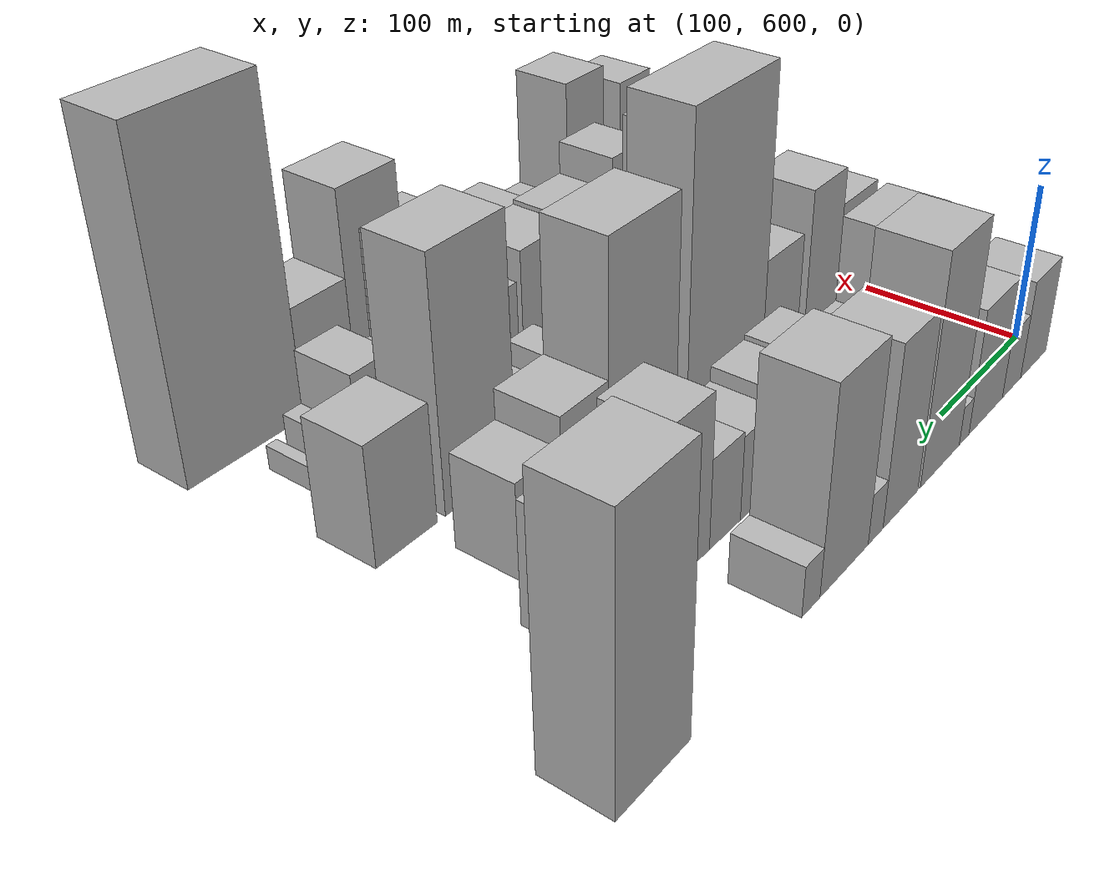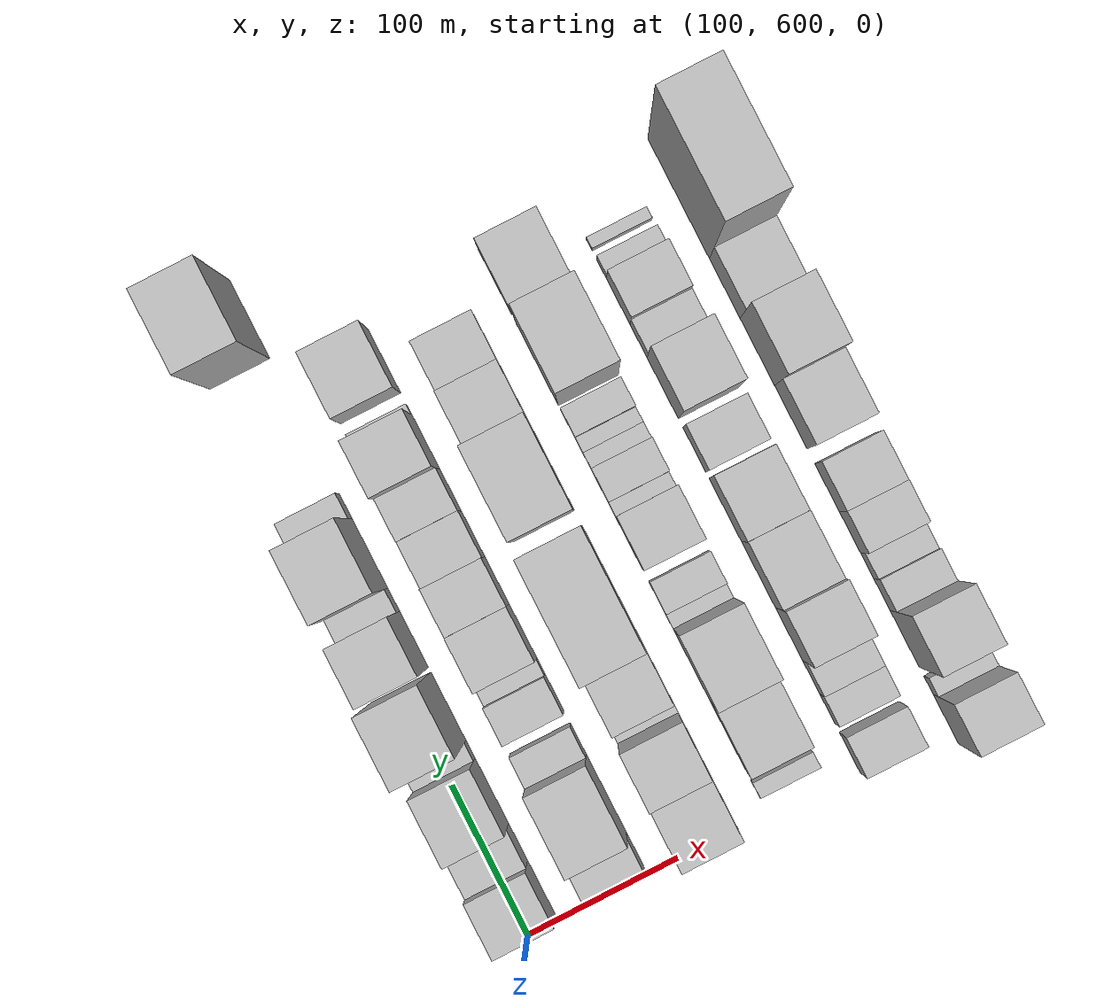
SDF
<sdf version="1.6">
 <world name="default">
  <model name="building_45">
   <static>1</static>
   <pose>100.0000 621.7129 0 0.000000 0.000000 0.000000</pose>
   <link name="link">
    <pose>0 0 31.50 0 0 0</pose>
    <collision name="collision"><geometry><box><size>40.0000 36.3681 63.0000</size></box></geometry></collision>
    <visual name="visual">
     <cast_shadows>0</cast_shadows>
     <geometry><box><size>40.0000 36.3681 63.0000</size></box></geometry>
     <material>
      <script>
       <uri>model://HANNAS_wall/materials/scripts</uri>
       <uri>model://HANNAS_wall/materials/textures</uri>
       <name>vrc/HANNAS_wall</name>
      </script>
     </material>
    </visual>
   </link>
  </model>
  <model name="building_46">
   <static>1</static>
   <pose>100.0000 652.3315 0 0.000000 0.000000 0.000000</pose>
   <link name="link">
    <pose>0 0 21.00 0 0 0</pose>
    <collision name="collision"><geometry><box><size>40.0000 24.8691 42.0000</size></box></geometry></collision>
    <visual name="visual">
     <cast_shadows>0</cast_shadows>
     <geometry><box><size>40.0000 24.8691 42.0000</size></box></geometry>
     <material>
      <script>
       <uri>model://HANNAS_wall/materials/scripts</uri>
       <uri>model://HANNAS_wall/materials/textures</uri>
       <name>vrc/HANNAS_wall</name>
      </script>
     </material>
    </visual>
   </link>
  </model>
  <model name="building_47">
   <static>1</static>
   <pose>100.0000 686.5440 0 0.000000 0.000000 0.000000</pose>
   <link name="link">
    <pose>0 0 39.00 0 0 0</pose>
    <collision name="collision"><geometry><box><size>40.0000 43.5559 78.0000</size></box></geometry></collision>
    <visual name="visual">
     <cast_shadows>0</cast_shadows>
     <geometry><box><size>40.0000 43.5559 78.0000</size></box></geometry>
     <material>
      <script>
       <uri>model://HANNAS_wall/materials/scripts</uri>
       <uri>model://HANNAS_wall/materials/textures</uri>
       <name>vrc/HANNAS_wall</name>
      </script>
     </material>
    </visual>
   </link>
  </model>
  <model name="building_48">
   <static>1</static>
   <pose>100.0000 714.2670 0 0.000000 0.000000 0.000000</pose>
   <link name="link">
    <pose>0 0 12.00 0 0 0</pose>
    <collision name="collision"><geometry><box><size>40.0000 11.8901 24.0000</size></box></geometry></collision>
    <visual name="visual">
     <cast_shadows>0</cast_shadows>
     <geometry><box><size>40.0000 11.8901 24.0000</size></box></geometry>
     <material>
      <script>
       <uri>model://HANNAS_wall/materials/scripts</uri>
       <uri>model://HANNAS_wall/materials/textures</uri>
       <name>vrc/HANNAS_wall</name>
      </script>
     </material>
    </visual>
   </link>
  </model>
  <model name="building_49">
   <static>1</static>
   <pose>100.0000 743.0465 0 0.000000 0.000000 0.000000</pose>
   <link name="link">
    <pose>0 0 69.00 0 0 0</pose>
    <collision name="collision"><geometry><box><size>40.0000 45.6688 138.0000</size></box></geometry></collision>
    <visual name="visual">
     <cast_shadows>0</cast_shadows>
     <geometry><box><size>40.0000 45.6688 138.0000</size></box></geometry>
     <material>
      <script>
       <uri>model://HANNAS_wall/materials/scripts</uri>
       <uri>model://HANNAS_wall/materials/textures</uri>
       <name>vrc/HANNAS_wall</name>
      </script>
     </material>
    </visual>
   </link>
  </model>
  <model name="building_50">
   <static>1</static>
   <pose>100.0000 787.7308 0 0.000000 0.000000 0.000000</pose>
   <link name="link">
    <pose>0 0 54.00 0 0 0</pose>
    <collision name="collision"><geometry><box><size>40.0000 37.6997 108.0000</size></box></geometry></collision>
    <visual name="visual">
     <cast_shadows>0</cast_shadows>
     <geometry><box><size>40.0000 37.6997 108.0000</size></box></geometry>
     <material>
      <script>
       <uri>model://HANNAS_wall/materials/scripts</uri>
       <uri>model://HANNAS_wall/materials/textures</uri>
       <name>vrc/HANNAS_wall</name>
      </script>
     </material>
    </visual>
   </link>
  </model>
  <model name="building_51">
   <static>1</static>
   <pose>100.0000 814.2409 0 0.000000 0.000000 0.000000</pose>
   <link name="link">
    <pose>0 0 15.00 0 0 0</pose>
    <collision name="collision"><geometry><box><size>40.0000 15.3207 30.0000</size></box></geometry></collision>
    <visual name="visual">
     <cast_shadows>0</cast_shadows>
     <geometry><box><size>40.0000 15.3207 30.0000</size></box></geometry>
     <material>
      <script>
       <uri>model://HANNAS_wall/materials/scripts</uri>
       <uri>model://HANNAS_wall/materials/textures</uri>
       <name>vrc/HANNAS_wall</name>
      </script>
     </material>
    </visual>
   </link>
  </model>
  <model name="building_52">
   <static>1</static>
   <pose>100.0000 845.3127 0 0.000000 0.000000 0.000000</pose>
   <link name="link">
    <pose>0 0 60.00 0 0 0</pose>
    <collision name="collision"><geometry><box><size>40.0000 46.8228 120.0000</size></box></geometry></collision>
    <visual name="visual">
     <cast_shadows>0</cast_shadows>
     <geometry><box><size>40.0000 46.8228 120.0000</size></box></geometry>
     <material>
      <script>
       <uri>model://HANNAS_wall/materials/scripts</uri>
       <uri>model://HANNAS_wall/materials/textures</uri>
       <name>vrc/HANNAS_wall</name>
      </script>
     </material>
    </visual>
   </link>
  </model>
  <model name="building_53">
   <static>1</static>
   <pose>100.0000 877.0224 0 0.000000 0.000000 0.000000</pose>
   <link name="link">
    <pose>0 0 15.00 0 0 0</pose>
    <collision name="collision"><geometry><box><size>40.0000 16.5968 30.0000</size></box></geometry></collision>
    <visual name="visual">
     <cast_shadows>0</cast_shadows>
     <geometry><box><size>40.0000 16.5968 30.0000</size></box></geometry>
     <material>
      <script>
       <uri>model://HANNAS_wall/materials/scripts</uri>
       <uri>model://HANNAS_wall/materials/textures</uri>
       <name>vrc/HANNAS_wall</name>
      </script>
     </material>
    </visual>
   </link>
  </model>
  <model name="building_54">
   <static>1</static>
   <pose>100.0000 1002.0476 0 0.000000 0.000000 0.000000</pose>
   <link name="link">
    <pose>0 0 78.00 0 0 0</pose>
    <collision name="collision"><geometry><box><size>40.0000 52.4845 156.0000</size></box></geometry></collision>
    <visual name="visual">
     <cast_shadows>0</cast_shadows>
     <geometry><box><size>40.0000 52.4845 156.0000</size></box></geometry>
     <material>
      <script>
       <uri>model://HANNAS_wall/materials/scripts</uri>
       <uri>model://HANNAS_wall/materials/textures</uri>
       <name>vrc/HANNAS_wall</name>
      </script>
     </material>
    </visual>
   </link>
  </model>
  <model name="building_97">
   <static>1</static>
   <pose>160.0000 616.7836 0 0.000000 0.000000 0.000000</pose>
   <link name="link">
    <pose>0 0 22.50 0 0 0</pose>
    <collision name="collision"><geometry><box><size>40.0000 23.3412 45.0000</size></box></geometry></collision>
    <visual name="visual">
     <cast_shadows>0</cast_shadows>
     <geometry><box><size>40.0000 23.3412 45.0000</size></box></geometry>
     <material>
      <script>
       <uri>model://HANNAS_wall/materials/scripts</uri>
       <uri>model://HANNAS_wall/materials/textures</uri>
       <name>vrc/HANNAS_wall</name>
      </script>
     </material>
    </visual>
   </link>
  </model>
  <model name="building_98">
   <static>1</static>
   <pose>160.0000 654.6012 0 0.000000 0.000000 0.000000</pose>
   <link name="link">
    <pose>0 0 45.00 0 0 0</pose>
    <collision name="collision"><geometry><box><size>40.0000 52.2940 90.0000</size></box></geometry></collision>
    <visual name="visual">
     <cast_shadows>0</cast_shadows>
     <geometry><box><size>40.0000 52.2940 90.0000</size></box></geometry>
     <material>
      <script>
       <uri>model://HANNAS_wall/materials/scripts</uri>
       <uri>model://HANNAS_wall/materials/textures</uri>
       <name>vrc/HANNAS_wall</name>
      </script>
     </material>
    </visual>
   </link>
  </model>
  <model name="building_99">
   <static>1</static>
   <pose>160.0000 690.9713 0 0.000000 0.000000 0.000000</pose>
   <link name="link">
    <pose>0 0 18.00 0 0 0</pose>
    <collision name="collision"><geometry><box><size>40.0000 20.4461 36.0000</size></box></geometry></collision>
    <visual name="visual">
     <cast_shadows>0</cast_shadows>
     <geometry><box><size>40.0000 20.4461 36.0000</size></box></geometry>
     <material>
      <script>
       <uri>model://HANNAS_wall/materials/scripts</uri>
       <uri>model://HANNAS_wall/materials/textures</uri>
       <name>vrc/HANNAS_wall</name>
      </script>
     </material>
    </visual>
   </link>
  </model>
  <model name="building_100">
   <static>1</static>
   <pose>160.0000 721.6264 0 0.000000 0.000000 0.000000</pose>
   <link name="link">
    <pose>0 0 21.00 0 0 0</pose>
    <collision name="collision"><geometry><box><size>40.0000 24.8641 42.0000</size></box></geometry></collision>
    <visual name="visual">
     <cast_shadows>0</cast_shadows>
     <geometry><box><size>40.0000 24.8641 42.0000</size></box></geometry>
     <material>
      <script>
       <uri>model://HANNAS_wall/materials/scripts</uri>
       <uri>model://HANNAS_wall/materials/textures</uri>
       <name>vrc/HANNAS_wall</name>
      </script>
     </material>
    </visual>
   </link>
  </model>
  <model name="building_101">
   <static>1</static>
   <pose>160.0000 739.4592 0 0.000000 0.000000 0.000000</pose>
   <link name="link">
    <pose>0 0 12.00 0 0 0</pose>
    <collision name="collision"><geometry><box><size>40.0000 10.8015 24.0000</size></box></geometry></collision>
    <visual name="visual">
     <cast_shadows>0</cast_shadows>
     <geometry><box><size>40.0000 10.8015 24.0000</size></box></geometry>
     <material>
      <script>
       <uri>model://HANNAS_wall/materials/scripts</uri>
       <uri>model://HANNAS_wall/materials/textures</uri>
       <name>vrc/HANNAS_wall</name>
      </script>
     </material>
    </visual>
   </link>
  </model>
  <model name="building_102">
   <static>1</static>
   <pose>160.0000 762.8154 0 0.000000 0.000000 0.000000</pose>
   <link name="link">
    <pose>0 0 31.50 0 0 0</pose>
    <collision name="collision"><geometry><box><size>40.0000 35.9109 63.0000</size></box></geometry></collision>
    <visual name="visual">
     <cast_shadows>0</cast_shadows>
     <geometry><box><size>40.0000 35.9109 63.0000</size></box></geometry>
     <material>
      <script>
       <uri>model://HANNAS_wall/materials/scripts</uri>
       <uri>model://HANNAS_wall/materials/textures</uri>
       <name>vrc/HANNAS_wall</name>
      </script>
     </material>
    </visual>
   </link>
  </model>
  <model name="building_103">
   <static>1</static>
   <pose>160.0000 796.5156 0 0.000000 0.000000 0.000000</pose>
   <link name="link">
    <pose>0 0 30.00 0 0 0</pose>
    <collision name="collision"><geometry><box><size>40.0000 31.4895 60.0000</size></box></geometry></collision>
    <visual name="visual">
     <cast_shadows>0</cast_shadows>
     <geometry><box><size>40.0000 31.4895 60.0000</size></box></geometry>
     <material>
      <script>
       <uri>model://HANNAS_wall/materials/scripts</uri>
       <uri>model://HANNAS_wall/materials/textures</uri>
       <name>vrc/HANNAS_wall</name>
      </script>
     </material>
    </visual>
   </link>
  </model>
  <model name="building_104">
   <static>1</static>
   <pose>160.0000 827.5429 0 0.000000 0.000000 0.000000</pose>
   <link name="link">
    <pose>0 0 25.50 0 0 0</pose>
    <collision name="collision"><geometry><box><size>40.0000 30.5651 51.0000</size></box></geometry></collision>
    <visual name="visual">
     <cast_shadows>0</cast_shadows>
     <geometry><box><size>40.0000 30.5651 51.0000</size></box></geometry>
     <material>
      <script>
       <uri>model://HANNAS_wall/materials/scripts</uri>
       <uri>model://HANNAS_wall/materials/textures</uri>
       <name>vrc/HANNAS_wall</name>
      </script>
     </material>
    </visual>
   </link>
  </model>
  <model name="building_105">
   <static>1</static>
   <pose>160.0000 856.7677 0 0.000000 0.000000 0.000000</pose>
   <link name="link">
    <pose>0 0 27.00 0 0 0</pose>
    <collision name="collision"><geometry><box><size>40.0000 27.8846 54.0000</size></box></geometry></collision>
    <visual name="visual">
     <cast_shadows>0</cast_shadows>
     <geometry><box><size>40.0000 27.8846 54.0000</size></box></geometry>
     <material>
      <script>
       <uri>model://HANNAS_wall/materials/scripts</uri>
       <uri>model://HANNAS_wall/materials/textures</uri>
       <name>vrc/HANNAS_wall</name>
      </script>
     </material>
    </visual>
   </link>
  </model>
  <model name="building_106">
   <static>1</static>
   <pose>160.0000 888.9263 0 0.000000 0.000000 0.000000</pose>
   <link name="link">
    <pose>0 0 46.50 0 0 0</pose>
    <collision name="collision"><geometry><box><size>40.0000 36.4326 93.0000</size></box></geometry></collision>
    <visual name="visual">
     <cast_shadows>0</cast_shadows>
     <geometry><box><size>40.0000 36.4326 93.0000</size></box></geometry>
     <material>
      <script>
       <uri>model://HANNAS_wall/materials/scripts</uri>
       <uri>model://HANNAS_wall/materials/textures</uri>
       <name>vrc/HANNAS_wall</name>
      </script>
     </material>
    </visual>
   </link>
  </model>
  <model name="building_107">
   <static>1</static>
   <pose>160.0000 910.5345 0 0.000000 0.000000 0.000000</pose>
   <link name="link">
    <pose>0 0 7.50 0 0 0</pose>
    <collision name="collision"><geometry><box><size>40.0000 6.7838 15.0000</size></box></geometry></collision>
    <visual name="visual">
     <cast_shadows>0</cast_shadows>
     <geometry><box><size>40.0000 6.7838 15.0000</size></box></geometry>
     <material>
      <script>
       <uri>model://HANNAS_wall/materials/scripts</uri>
       <uri>model://HANNAS_wall/materials/textures</uri>
       <name>vrc/HANNAS_wall</name>
      </script>
     </material>
    </visual>
   </link>
  </model>
  <model name="building_108">
   <static>1</static>
   <pose>160.0000 943.4045 0 0.000000 0.000000 0.000000</pose>
   <link name="link">
    <pose>0 0 36.00 0 0 0</pose>
    <collision name="collision"><geometry><box><size>40.0000 42.9562 72.0000</size></box></geometry></collision>
    <visual name="visual">
     <cast_shadows>0</cast_shadows>
     <geometry><box><size>40.0000 42.9562 72.0000</size></box></geometry>
     <material>
      <script>
       <uri>model://HANNAS_wall/materials/scripts</uri>
       <uri>model://HANNAS_wall/materials/textures</uri>
       <name>vrc/HANNAS_wall</name>
      </script>
     </material>
    </visual>
   </link>
  </model>
  <model name="building_153">
   <static>1</static>
   <pose>220.0000 620.1859 0 0.000000 0.000000 0.000000</pose>
   <link name="link">
    <pose>0 0 37.50 0 0 0</pose>
    <collision name="collision"><geometry><box><size>40.0000 41.4563 75.0000</size></box></geometry></collision>
    <visual name="visual">
     <cast_shadows>0</cast_shadows>
     <geometry><box><size>40.0000 41.4563 75.0000</size></box></geometry>
     <material>
      <script>
       <uri>model://HANNAS_wall/materials/scripts</uri>
       <uri>model://HANNAS_wall/materials/textures</uri>
       <name>vrc/HANNAS_wall</name>
      </script>
     </material>
    </visual>
   </link>
  </model>
  <model name="building_154">
   <static>1</static>
   <pose>220.0000 659.6384 0 0.000000 0.000000 0.000000</pose>
   <link name="link">
    <pose>0 0 49.50 0 0 0</pose>
    <collision name="collision"><geometry><box><size>40.0000 37.4487 99.0000</size></box></geometry></collision>
    <visual name="visual">
     <cast_shadows>0</cast_shadows>
     <geometry><box><size>40.0000 37.4487 99.0000</size></box></geometry>
     <material>
      <script>
       <uri>model://HANNAS_wall/materials/scripts</uri>
       <uri>model://HANNAS_wall/materials/textures</uri>
       <name>vrc/HANNAS_wall</name>
      </script>
     </material>
    </visual>
   </link>
  </model>
  <model name="building_155">
   <static>1</static>
   <pose>220.0000 682.5464 0 0.000000 0.000000 0.000000</pose>
   <link name="link">
    <pose>0 0 9.00 0 0 0</pose>
    <collision name="collision"><geometry><box><size>40.0000 8.3672 18.0000</size></box></geometry></collision>
    <visual name="visual">
     <cast_shadows>0</cast_shadows>
     <geometry><box><size>40.0000 8.3672 18.0000</size></box></geometry>
     <material>
      <script>
       <uri>model://HANNAS_wall/materials/scripts</uri>
       <uri>model://HANNAS_wall/materials/textures</uri>
       <name>vrc/HANNAS_wall</name>
      </script>
     </material>
    </visual>
   </link>
  </model>
  <model name="building_156">
   <static>1</static>
   <pose>220.0000 706.3775 0 0.000000 0.000000 0.000000</pose>
   <link name="link">
    <pose>0 0 37.50 0 0 0</pose>
    <collision name="collision"><geometry><box><size>40.0000 39.2950 75.0000</size></box></geometry></collision>
    <visual name="visual">
     <cast_shadows>0</cast_shadows>
     <geometry><box><size>40.0000 39.2950 75.0000</size></box></geometry>
     <material>
      <script>
       <uri>model://HANNAS_wall/materials/scripts</uri>
       <uri>model://HANNAS_wall/materials/textures</uri>
       <name>vrc/HANNAS_wall</name>
      </script>
     </material>
    </visual>
   </link>
  </model>
  <model name="building_157">
   <static>1</static>
   <pose>220.0000 764.1776 0 0.000000 0.000000 0.000000</pose>
   <link name="link">
    <pose>0 0 96.00 0 0 0</pose>
    <collision name="collision"><geometry><box><size>40.0000 76.3051 192.0000</size></box></geometry></collision>
    <visual name="visual">
     <cast_shadows>0</cast_shadows>
     <geometry><box><size>40.0000 76.3051 192.0000</size></box></geometry>
     <material>
      <script>
       <uri>model://HANNAS_wall/materials/scripts</uri>
       <uri>model://HANNAS_wall/materials/textures</uri>
       <name>vrc/HANNAS_wall</name>
      </script>
     </material>
    </visual>
   </link>
  </model>
  <model name="building_158">
   <static>1</static>
   <pose>220.0000 841.8316 0 0.000000 0.000000 0.000000</pose>
   <link name="link">
    <pose>0 0 76.50 0 0 0</pose>
    <collision name="collision"><geometry><box><size>40.0000 59.0029 153.0000</size></box></geometry></collision>
    <visual name="visual">
     <cast_shadows>0</cast_shadows>
     <geometry><box><size>40.0000 59.0029 153.0000</size></box></geometry>
     <material>
      <script>
       <uri>model://HANNAS_wall/materials/scripts</uri>
       <uri>model://HANNAS_wall/materials/textures</uri>
       <name>vrc/HANNAS_wall</name>
      </script>
     </material>
    </visual>
   </link>
  </model>
  <model name="building_159">
   <static>1</static>
   <pose>220.0000 890.1207 0 0.000000 0.000000 0.000000</pose>
   <link name="link">
    <pose>0 0 37.50 0 0 0</pose>
    <collision name="collision"><geometry><box><size>40.0000 37.5754 75.0000</size></box></geometry></collision>
    <visual name="visual">
     <cast_shadows>0</cast_shadows>
     <geometry><box><size>40.0000 37.5754 75.0000</size></box></geometry>
     <material>
      <script>
       <uri>model://HANNAS_wall/materials/scripts</uri>
       <uri>model://HANNAS_wall/materials/textures</uri>
       <name>vrc/HANNAS_wall</name>
      </script>
     </material>
    </visual>
   </link>
  </model>
  <model name="building_160">
   <static>1</static>
   <pose>220.0000 925.5308 0 0.000000 0.000000 0.000000</pose>
   <link name="link">
    <pose>0 0 28.50 0 0 0</pose>
    <collision name="collision"><geometry><box><size>40.0000 33.2448 57.0000</size></box></geometry></collision>
    <visual name="visual">
     <cast_shadows>0</cast_shadows>
     <geometry><box><size>40.0000 33.2448 57.0000</size></box></geometry>
     <material>
      <script>
       <uri>model://HANNAS_wall/materials/scripts</uri>
       <uri>model://HANNAS_wall/materials/textures</uri>
       <name>vrc/HANNAS_wall</name>
      </script>
     </material>
    </visual>
   </link>
  </model>
  <model name="building_204">
   <static>1</static>
   <pose>280.0000 616.7926 0 0.000000 0.000000 0.000000</pose>
   <link name="link">
    <pose>0 0 12.00 0 0 0</pose>
    <collision name="collision"><geometry><box><size>40.0000 10.3981 24.0000</size></box></geometry></collision>
    <visual name="visual">
     <cast_shadows>0</cast_shadows>
     <geometry><box><size>40.0000 10.3981 24.0000</size></box></geometry>
     <material>
      <script>
       <uri>model://HANNAS_wall/materials/scripts</uri>
       <uri>model://HANNAS_wall/materials/textures</uri>
       <name>vrc/HANNAS_wall</name>
      </script>
     </material>
    </visual>
   </link>
  </model>
  <model name="building_205">
   <static>1</static>
   <pose>280.0000 653.2067 0 0.000000 0.000000 0.000000</pose>
   <link name="link">
    <pose>0 0 40.50 0 0 0</pose>
    <collision name="collision"><geometry><box><size>40.0000 46.4300 81.0000</size></box></geometry></collision>
    <visual name="visual">
     <cast_shadows>0</cast_shadows>
     <geometry><box><size>40.0000 46.4300 81.0000</size></box></geometry>
     <material>
      <script>
       <uri>model://HANNAS_wall/materials/scripts</uri>
       <uri>model://HANNAS_wall/materials/textures</uri>
       <name>vrc/HANNAS_wall</name>
      </script>
     </material>
    </visual>
   </link>
  </model>
  <model name="building_206">
   <static>1</static>
   <pose>280.0000 700.0996 0 0.000000 0.000000 0.000000</pose>
   <link name="link">
    <pose>0 0 67.50 0 0 0</pose>
    <collision name="collision"><geometry><box><size>40.0000 47.3556 135.0000</size></box></geometry></collision>
    <visual name="visual">
     <cast_shadows>0</cast_shadows>
     <geometry><box><size>40.0000 47.3556 135.0000</size></box></geometry>
     <material>
      <script>
       <uri>model://HANNAS_wall/materials/scripts</uri>
       <uri>model://HANNAS_wall/materials/textures</uri>
       <name>vrc/HANNAS_wall</name>
      </script>
     </material>
    </visual>
   </link>
  </model>
  <model name="building_207">
   <static>1</static>
   <pose>280.0000 728.6283 0 0.000000 0.000000 0.000000</pose>
   <link name="link">
    <pose>0 0 10.50 0 0 0</pose>
    <collision name="collision"><geometry><box><size>40.0000 9.7019 21.0000</size></box></geometry></collision>
    <visual name="visual">
     <cast_shadows>0</cast_shadows>
     <geometry><box><size>40.0000 9.7019 21.0000</size></box></geometry>
     <material>
      <script>
       <uri>model://HANNAS_wall/materials/scripts</uri>
       <uri>model://HANNAS_wall/materials/textures</uri>
       <name>vrc/HANNAS_wall</name>
      </script>
     </material>
    </visual>
   </link>
  </model>
  <model name="building_208">
   <static>1</static>
   <pose>280.0000 744.1507 0 0.000000 0.000000 0.000000</pose>
   <link name="link">
    <pose>0 0 18.00 0 0 0</pose>
    <collision name="collision"><geometry><box><size>40.0000 21.3428 36.0000</size></box></geometry></collision>
    <visual name="visual">
     <cast_shadows>0</cast_shadows>
     <geometry><box><size>40.0000 21.3428 36.0000</size></box></geometry>
     <material>
      <script>
       <uri>model://HANNAS_wall/materials/scripts</uri>
       <uri>model://HANNAS_wall/materials/textures</uri>
       <name>vrc/HANNAS_wall</name>
      </script>
     </material>
    </visual>
   </link>
  </model>
  <model name="building_209">
   <static>1</static>
   <pose>280.0000 780.3686 0 0.000000 0.000000 0.000000</pose>
   <link name="link">
    <pose>0 0 33.00 0 0 0</pose>
    <collision name="collision"><geometry><box><size>40.0000 35.0929 66.0000</size></box></geometry></collision>
    <visual name="visual">
     <cast_shadows>0</cast_shadows>
     <geometry><box><size>40.0000 35.0929 66.0000</size></box></geometry>
     <material>
      <script>
       <uri>model://HANNAS_wall/materials/scripts</uri>
       <uri>model://HANNAS_wall/materials/textures</uri>
       <name>vrc/HANNAS_wall</name>
      </script>
     </material>
    </visual>
   </link>
  </model>
  <model name="building_210">
   <static>1</static>
   <pose>280.0000 802.5792 0 0.000000 0.000000 0.000000</pose>
   <link name="link">
    <pose>0 0 10.50 0 0 0</pose>
    <collision name="collision"><geometry><box><size>40.0000 9.3283 21.0000</size></box></geometry></collision>
    <visual name="visual">
     <cast_shadows>0</cast_shadows>
     <geometry><box><size>40.0000 9.3283 21.0000</size></box></geometry>
     <material>
      <script>
       <uri>model://HANNAS_wall/materials/scripts</uri>
       <uri>model://HANNAS_wall/materials/textures</uri>
       <name>vrc/HANNAS_wall</name>
      </script>
     </material>
    </visual>
   </link>
  </model>
  <model name="building_211">
   <static>1</static>
   <pose>280.0000 818.3663 0 0.000000 0.000000 0.000000</pose>
   <link name="link">
    <pose>0 0 19.50 0 0 0</pose>
    <collision name="collision"><geometry><box><size>40.0000 22.2459 39.0000</size></box></geometry></collision>
    <visual name="visual">
     <cast_shadows>0</cast_shadows>
     <geometry><box><size>40.0000 22.2459 39.0000</size></box></geometry>
     <material>
      <script>
       <uri>model://HANNAS_wall/materials/scripts</uri>
       <uri>model://HANNAS_wall/materials/textures</uri>
       <name>vrc/HANNAS_wall</name>
      </script>
     </material>
    </visual>
   </link>
  </model>
  <model name="building_212">
   <static>1</static>
   <pose>280.0000 834.8119 0 0.000000 0.000000 0.000000</pose>
   <link name="link">
    <pose>0 0 12.00 0 0 0</pose>
    <collision name="collision"><geometry><box><size>40.0000 10.6452 24.0000</size></box></geometry></collision>
    <visual name="visual">
     <cast_shadows>0</cast_shadows>
     <geometry><box><size>40.0000 10.6452 24.0000</size></box></geometry>
     <material>
      <script>
       <uri>model://HANNAS_wall/materials/scripts</uri>
       <uri>model://HANNAS_wall/materials/textures</uri>
       <name>vrc/HANNAS_wall</name>
      </script>
     </material>
    </visual>
   </link>
  </model>
  <model name="building_213">
   <static>1</static>
   <pose>280.0000 845.1357 0 0.000000 0.000000 0.000000</pose>
   <link name="link">
    <pose>0 0 10.50 0 0 0</pose>
    <collision name="collision"><geometry><box><size>40.0000 10.0023 21.0000</size></box></geometry></collision>
    <visual name="visual">
     <cast_shadows>0</cast_shadows>
     <geometry><box><size>40.0000 10.0023 21.0000</size></box></geometry>
     <material>
      <script>
       <uri>model://HANNAS_wall/materials/scripts</uri>
       <uri>model://HANNAS_wall/materials/textures</uri>
       <name>vrc/HANNAS_wall</name>
      </script>
     </material>
    </visual>
   </link>
  </model>
  <model name="building_214">
   <static>1</static>
   <pose>280.0000 859.7303 0 0.000000 0.000000 0.000000</pose>
   <link name="link">
    <pose>0 0 16.50 0 0 0</pose>
    <collision name="collision"><geometry><box><size>40.0000 19.1869 33.0000</size></box></geometry></collision>
    <visual name="visual">
     <cast_shadows>0</cast_shadows>
     <geometry><box><size>40.0000 19.1869 33.0000</size></box></geometry>
     <material>
      <script>
       <uri>model://HANNAS_wall/materials/scripts</uri>
       <uri>model://HANNAS_wall/materials/textures</uri>
       <name>vrc/HANNAS_wall</name>
      </script>
     </material>
    </visual>
   </link>
  </model>
  <model name="building_215">
   <static>1</static>
   <pose>280.0000 899.7882 0 0.000000 0.000000 0.000000</pose>
   <link name="link">
    <pose>0 0 75.00 0 0 0</pose>
    <collision name="collision"><geometry><box><size>40.0000 54.9289 150.0000</size></box></geometry></collision>
    <visual name="visual">
     <cast_shadows>0</cast_shadows>
     <geometry><box><size>40.0000 54.9289 150.0000</size></box></geometry>
     <material>
      <script>
       <uri>model://HANNAS_wall/materials/scripts</uri>
       <uri>model://HANNAS_wall/materials/textures</uri>
       <name>vrc/HANNAS_wall</name>
      </script>
     </material>
    </visual>
   </link>
  </model>
  <model name="building_216">
   <static>1</static>
   <pose>280.0000 954.7654 0 0.000000 0.000000 0.000000</pose>
   <link name="link">
    <pose>0 0 36.00 0 0 0</pose>
    <collision name="collision"><geometry><box><size>40.0000 43.0254 72.0000</size></box></geometry></collision>
    <visual name="visual">
     <cast_shadows>0</cast_shadows>
     <geometry><box><size>40.0000 43.0254 72.0000</size></box></geometry>
     <material>
      <script>
       <uri>model://HANNAS_wall/materials/scripts</uri>
       <uri>model://HANNAS_wall/materials/textures</uri>
       <name>vrc/HANNAS_wall</name>
      </script>
     </material>
    </visual>
   </link>
  </model>
  <model name="building_264">
   <static>1</static>
   <pose>340.0000 609.6647 0 0.000000 0.000000 0.000000</pose>
   <link name="link">
    <pose>0 0 24.00 0 0 0</pose>
    <collision name="collision"><geometry><box><size>40.0000 26.7049 48.0000</size></box></geometry></collision>
    <visual name="visual">
     <cast_shadows>0</cast_shadows>
     <geometry><box><size>40.0000 26.7049 48.0000</size></box></geometry>
     <material>
      <script>
       <uri>model://HANNAS_wall/materials/scripts</uri>
       <uri>model://HANNAS_wall/materials/textures</uri>
       <name>vrc/HANNAS_wall</name>
      </script>
     </material>
    </visual>
   </link>
  </model>
  <model name="building_265">
   <static>1</static>
   <pose>340.0000 638.9620 0 0.000000 0.000000 0.000000</pose>
   <link name="link">
    <pose>0 0 18.00 0 0 0</pose>
    <collision name="collision"><geometry><box><size>40.0000 19.8898 36.0000</size></box></geometry></collision>
    <visual name="visual">
     <cast_shadows>0</cast_shadows>
     <geometry><box><size>40.0000 19.8898 36.0000</size></box></geometry>
     <material>
      <script>
       <uri>model://HANNAS_wall/materials/scripts</uri>
       <uri>model://HANNAS_wall/materials/textures</uri>
       <name>vrc/HANNAS_wall</name>
      </script>
     </material>
    </visual>
   </link>
  </model>
  <model name="building_266">
   <static>1</static>
   <pose>340.0000 660.0157 0 0.000000 0.000000 0.000000</pose>
   <link name="link">
    <pose>0 0 19.50 0 0 0</pose>
    <collision name="collision"><geometry><box><size>40.0000 22.2176 39.0000</size></box></geometry></collision>
    <visual name="visual">
     <cast_shadows>0</cast_shadows>
     <geometry><box><size>40.0000 22.2176 39.0000</size></box></geometry>
     <material>
      <script>
       <uri>model://HANNAS_wall/materials/scripts</uri>
       <uri>model://HANNAS_wall/materials/textures</uri>
       <name>vrc/HANNAS_wall</name>
      </script>
     </material>
    </visual>
   </link>
  </model>
  <model name="building_267">
   <static>1</static>
   <pose>340.0000 688.8645 0 0.000000 0.000000 0.000000</pose>
   <link name="link">
    <pose>0 0 48.00 0 0 0</pose>
    <collision name="collision"><geometry><box><size>40.0000 35.4798 96.0000</size></box></geometry></collision>
    <visual name="visual">
     <cast_shadows>0</cast_shadows>
     <geometry><box><size>40.0000 35.4798 96.0000</size></box></geometry>
     <material>
      <script>
       <uri>model://HANNAS_wall/materials/scripts</uri>
       <uri>model://HANNAS_wall/materials/textures</uri>
       <name>vrc/HANNAS_wall</name>
      </script>
     </material>
    </visual>
   </link>
  </model>
  <model name="building_268">
   <static>1</static>
   <pose>340.0000 728.6008 0 0.000000 0.000000 0.000000</pose>
   <link name="link">
    <pose>0 0 37.50 0 0 0</pose>
    <collision name="collision"><geometry><box><size>40.0000 43.9928 75.0000</size></box></geometry></collision>
    <visual name="visual">
     <cast_shadows>0</cast_shadows>
     <geometry><box><size>40.0000 43.9928 75.0000</size></box></geometry>
     <material>
      <script>
       <uri>model://HANNAS_wall/materials/scripts</uri>
       <uri>model://HANNAS_wall/materials/textures</uri>
       <name>vrc/HANNAS_wall</name>
      </script>
     </material>
    </visual>
   </link>
  </model>
  <model name="building_269">
   <static>1</static>
   <pose>340.0000 771.8054 0 0.000000 0.000000 0.000000</pose>
   <link name="link">
    <pose>0 0 36.00 0 0 0</pose>
    <collision name="collision"><geometry><box><size>40.0000 42.4165 72.0000</size></box></geometry></collision>
    <visual name="visual">
     <cast_shadows>0</cast_shadows>
     <geometry><box><size>40.0000 42.4165 72.0000</size></box></geometry>
     <material>
      <script>
       <uri>model://HANNAS_wall/materials/scripts</uri>
       <uri>model://HANNAS_wall/materials/textures</uri>
       <name>vrc/HANNAS_wall</name>
      </script>
     </material>
    </visual>
   </link>
  </model>
  <model name="building_270">
   <static>1</static>
   <pose>340.0000 811.9060 0 0.000000 0.000000 0.000000</pose>
   <link name="link">
    <pose>0 0 27.00 0 0 0</pose>
    <collision name="collision"><geometry><box><size>40.0000 29.7848 54.0000</size></box></geometry></collision>
    <visual name="visual">
     <cast_shadows>0</cast_shadows>
     <geometry><box><size>40.0000 29.7848 54.0000</size></box></geometry>
     <material>
      <script>
       <uri>model://HANNAS_wall/materials/scripts</uri>
       <uri>model://HANNAS_wall/materials/textures</uri>
       <name>vrc/HANNAS_wall</name>
      </script>
     </material>
    </visual>
   </link>
  </model>
  <model name="building_271">
   <static>1</static>
   <pose>340.0000 853.2076 0 0.000000 0.000000 0.000000</pose>
   <link name="link">
    <pose>0 0 54.00 0 0 0</pose>
    <collision name="collision"><geometry><box><size>40.0000 40.8183 108.0000</size></box></geometry></collision>
    <visual name="visual">
     <cast_shadows>0</cast_shadows>
     <geometry><box><size>40.0000 40.8183 108.0000</size></box></geometry>
     <material>
      <script>
       <uri>model://HANNAS_wall/materials/scripts</uri>
       <uri>model://HANNAS_wall/materials/textures</uri>
       <name>vrc/HANNAS_wall</name>
      </script>
     </material>
    </visual>
   </link>
  </model>
  <model name="building_272">
   <static>1</static>
   <pose>340.0000 884.6837 0 0.000000 0.000000 0.000000</pose>
   <link name="link">
    <pose>0 0 21.00 0 0 0</pose>
    <collision name="collision"><geometry><box><size>40.0000 22.1340 42.0000</size></box></geometry></collision>
    <visual name="visual">
     <cast_shadows>0</cast_shadows>
     <geometry><box><size>40.0000 22.1340 42.0000</size></box></geometry>
     <material>
      <script>
       <uri>model://HANNAS_wall/materials/scripts</uri>
       <uri>model://HANNAS_wall/materials/textures</uri>
       <name>vrc/HANNAS_wall</name>
      </script>
     </material>
    </visual>
   </link>
  </model>
  <model name="building_273">
   <static>1</static>
   <pose>340.0000 911.0163 0 0.000000 0.000000 0.000000</pose>
   <link name="link">
    <pose>0 0 30.00 0 0 0</pose>
    <collision name="collision"><geometry><box><size>40.0000 30.5310 60.0000</size></box></geometry></collision>
    <visual name="visual">
     <cast_shadows>0</cast_shadows>
     <geometry><box><size>40.0000 30.5310 60.0000</size></box></geometry>
     <material>
      <script>
       <uri>model://HANNAS_wall/materials/scripts</uri>
       <uri>model://HANNAS_wall/materials/textures</uri>
       <name>vrc/HANNAS_wall</name>
      </script>
     </material>
    </visual>
   </link>
  </model>
  <model name="building_274">
   <static>1</static>
   <pose>340.0000 932.7305 0 0.000000 0.000000 0.000000</pose>
   <link name="link">
    <pose>0 0 13.50 0 0 0</pose>
    <collision name="collision"><geometry><box><size>40.0000 12.8974 27.0000</size></box></geometry></collision>
    <visual name="visual">
     <cast_shadows>0</cast_shadows>
     <geometry><box><size>40.0000 12.8974 27.0000</size></box></geometry>
     <material>
      <script>
       <uri>model://HANNAS_wall/materials/scripts</uri>
       <uri>model://HANNAS_wall/materials/textures</uri>
       <name>vrc/HANNAS_wall</name>
      </script>
     </material>
    </visual>
   </link>
  </model>
  <model name="building_275">
   <static>1</static>
   <pose>340.0000 948.9007 0 0.000000 0.000000 0.000000</pose>
   <link name="link">
    <pose>0 0 7.50 0 0 0</pose>
    <collision name="collision"><geometry><box><size>40.0000 7.4431 15.0000</size></box></geometry></collision>
    <visual name="visual">
     <cast_shadows>0</cast_shadows>
     <geometry><box><size>40.0000 7.4431 15.0000</size></box></geometry>
     <material>
      <script>
       <uri>model://HANNAS_wall/materials/scripts</uri>
       <uri>model://HANNAS_wall/materials/textures</uri>
       <name>vrc/HANNAS_wall</name>
      </script>
     </material>
    </visual>
   </link>
  </model>
  <model name="building_320">
   <static>1</static>
   <pose>400.0000 600.8670 0 0.000000 0.000000 0.000000</pose>
   <link name="link">
    <pose>0 0 49.50 0 0 0</pose>
    <collision name="collision"><geometry><box><size>40.0000 33.1235 99.0000</size></box></geometry></collision>
    <visual name="visual">
     <cast_shadows>0</cast_shadows>
     <geometry><box><size>40.0000 33.1235 99.0000</size></box></geometry>
     <material>
      <script>
       <uri>model://HANNAS_wall/materials/scripts</uri>
       <uri>model://HANNAS_wall/materials/textures</uri>
       <name>vrc/HANNAS_wall</name>
      </script>
     </material>
    </visual>
   </link>
  </model>
  <model name="building_321">
   <static>1</static>
   <pose>400.0000 623.5856 0 0.000000 0.000000 0.000000</pose>
   <link name="link">
    <pose>0 0 13.50 0 0 0</pose>
    <collision name="collision"><geometry><box><size>40.0000 12.3138 27.0000</size></box></geometry></collision>
    <visual name="visual">
     <cast_shadows>0</cast_shadows>
     <geometry><box><size>40.0000 12.3138 27.0000</size></box></geometry>
     <material>
      <script>
       <uri>model://HANNAS_wall/materials/scripts</uri>
       <uri>model://HANNAS_wall/materials/textures</uri>
       <name>vrc/HANNAS_wall</name>
      </script>
     </material>
    </visual>
   </link>
  </model>
  <model name="building_322">
   <static>1</static>
   <pose>400.0000 654.7587 0 0.000000 0.000000 0.000000</pose>
   <link name="link">
    <pose>0 0 58.50 0 0 0</pose>
    <collision name="collision"><geometry><box><size>40.0000 38.0324 117.0000</size></box></geometry></collision>
    <visual name="visual">
     <cast_shadows>0</cast_shadows>
     <geometry><box><size>40.0000 38.0324 117.0000</size></box></geometry>
     <material>
      <script>
       <uri>model://HANNAS_wall/materials/scripts</uri>
       <uri>model://HANNAS_wall/materials/textures</uri>
       <name>vrc/HANNAS_wall</name>
      </script>
     </material>
    </visual>
   </link>
  </model>
  <model name="building_323">
   <static>1</static>
   <pose>400.0000 684.3409 0 0.000000 0.000000 0.000000</pose>
   <link name="link">
    <pose>0 0 19.50 0 0 0</pose>
    <collision name="collision"><geometry><box><size>40.0000 21.1320 39.0000</size></box></geometry></collision>
    <visual name="visual">
     <cast_shadows>0</cast_shadows>
     <geometry><box><size>40.0000 21.1320 39.0000</size></box></geometry>
     <material>
      <script>
       <uri>model://HANNAS_wall/materials/scripts</uri>
       <uri>model://HANNAS_wall/materials/textures</uri>
       <name>vrc/HANNAS_wall</name>
      </script>
     </material>
    </visual>
   </link>
  </model>
  <model name="building_324">
   <static>1</static>
   <pose>400.0000 703.5950 0 0.000000 0.000000 0.000000</pose>
   <link name="link">
    <pose>0 0 15.00 0 0 0</pose>
    <collision name="collision"><geometry><box><size>40.0000 17.3762 30.0000</size></box></geometry></collision>
    <visual name="visual">
     <cast_shadows>0</cast_shadows>
     <geometry><box><size>40.0000 17.3762 30.0000</size></box></geometry>
     <material>
      <script>
       <uri>model://HANNAS_wall/materials/scripts</uri>
       <uri>model://HANNAS_wall/materials/textures</uri>
       <name>vrc/HANNAS_wall</name>
      </script>
     </material>
    </visual>
   </link>
  </model>
  <model name="building_325">
   <static>1</static>
   <pose>400.0000 725.9614 0 0.000000 0.000000 0.000000</pose>
   <link name="link">
    <pose>0 0 27.00 0 0 0</pose>
    <collision name="collision"><geometry><box><size>40.0000 27.3566 54.0000</size></box></geometry></collision>
    <visual name="visual">
     <cast_shadows>0</cast_shadows>
     <geometry><box><size>40.0000 27.3566 54.0000</size></box></geometry>
     <material>
      <script>
       <uri>model://HANNAS_wall/materials/scripts</uri>
       <uri>model://HANNAS_wall/materials/textures</uri>
       <name>vrc/HANNAS_wall</name>
      </script>
     </material>
    </visual>
   </link>
  </model>
  <model name="building_326">
   <static>1</static>
   <pose>400.0000 755.7596 0 0.000000 0.000000 0.000000</pose>
   <link name="link">
    <pose>0 0 27.00 0 0 0</pose>
    <collision name="collision"><geometry><box><size>40.0000 32.2397 54.0000</size></box></geometry></collision>
    <visual name="visual">
     <cast_shadows>0</cast_shadows>
     <geometry><box><size>40.0000 32.2397 54.0000</size></box></geometry>
     <material>
      <script>
       <uri>model://HANNAS_wall/materials/scripts</uri>
       <uri>model://HANNAS_wall/materials/textures</uri>
       <name>vrc/HANNAS_wall</name>
      </script>
     </material>
    </visual>
   </link>
  </model>
  <model name="building_327">
   <static>1</static>
   <pose>400.0000 803.0306 0 0.000000 0.000000 0.000000</pose>
   <link name="link">
    <pose>0 0 37.50 0 0 0</pose>
    <collision name="collision"><geometry><box><size>40.0000 42.3023 75.0000</size></box></geometry></collision>
    <visual name="visual">
     <cast_shadows>0</cast_shadows>
     <geometry><box><size>40.0000 42.3023 75.0000</size></box></geometry>
     <material>
      <script>
       <uri>model://HANNAS_wall/materials/scripts</uri>
       <uri>model://HANNAS_wall/materials/textures</uri>
       <name>vrc/HANNAS_wall</name>
      </script>
     </material>
    </visual>
   </link>
  </model>
  <model name="building_328">
   <static>1</static>
   <pose>400.0000 846.6576 0 0.000000 0.000000 0.000000</pose>
   <link name="link">
    <pose>0 0 61.50 0 0 0</pose>
    <collision name="collision"><geometry><box><size>40.0000 44.9518 123.0000</size></box></geometry></collision>
    <visual name="visual">
     <cast_shadows>0</cast_shadows>
     <geometry><box><size>40.0000 44.9518 123.0000</size></box></geometry>
     <material>
      <script>
       <uri>model://HANNAS_wall/materials/scripts</uri>
       <uri>model://HANNAS_wall/materials/textures</uri>
       <name>vrc/HANNAS_wall</name>
      </script>
     </material>
    </visual>
   </link>
  </model>
  <model name="building_329">
   <static>1</static>
   <pose>400.0000 889.1206 0 0.000000 0.000000 0.000000</pose>
   <link name="link">
    <pose>0 0 34.50 0 0 0</pose>
    <collision name="collision"><geometry><box><size>40.0000 39.9742 69.0000</size></box></geometry></collision>
    <visual name="visual">
     <cast_shadows>0</cast_shadows>
     <geometry><box><size>40.0000 39.9742 69.0000</size></box></geometry>
     <material>
      <script>
       <uri>model://HANNAS_wall/materials/scripts</uri>
       <uri>model://HANNAS_wall/materials/textures</uri>
       <name>vrc/HANNAS_wall</name>
      </script>
     </material>
    </visual>
   </link>
  </model>
  <model name="building_330">
   <static>1</static>
   <pose>400.0000 949.3391 0 0.000000 0.000000 0.000000</pose>
   <link name="link">
    <pose>0 0 102.00 0 0 0</pose>
    <collision name="collision"><geometry><box><size>40.0000 80.4626 204.0000</size></box></geometry></collision>
    <visual name="visual">
     <cast_shadows>0</cast_shadows>
     <geometry><box><size>40.0000 80.4626 204.0000</size></box></geometry>
     <material>
      <script>
       <uri>model://HANNAS_wall/materials/scripts</uri>
       <uri>model://HANNAS_wall/materials/textures</uri>
       <name>vrc/HANNAS_wall</name>
      </script>
     </material>
    </visual>
   </link>
  </model>
 </world>
</sdf>
